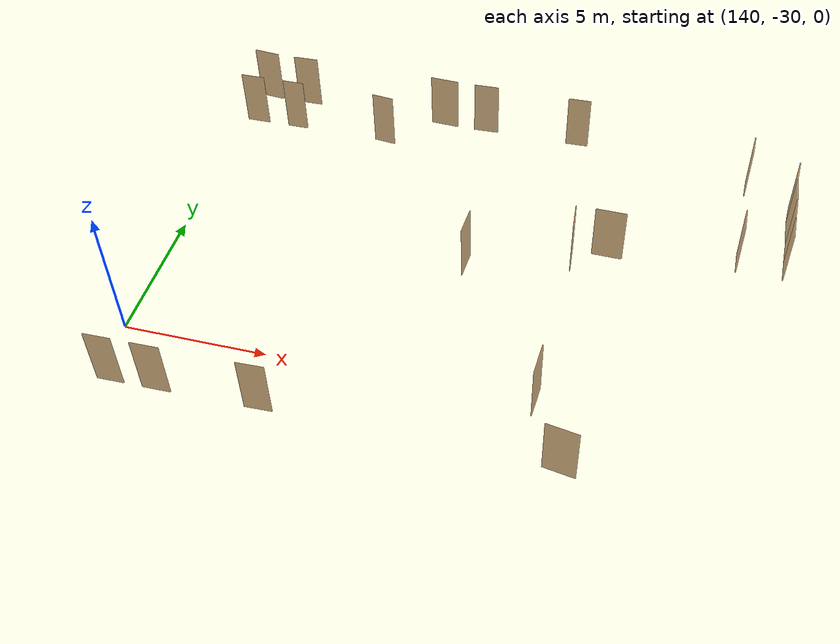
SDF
<sdf version="1.7">
 <world name="sim_world">
  <model name="puerta36">
   <pose>140.5134446038564 -32.16695627295637 0.0 0 0 0.018325965796610864</pose>
   <link name="right">
    <pose>0 0 1.11 0 0 0</pose>
    <visual name="right_visual">
     <geometry><box><size>0.9267566592611919 0.03 2.2</size></box></geometry>
     <material>
      <ambient>0.5 0.25 0 0.6</ambient>
      <diffuse>0.5 0.25 0 0.6</diffuse>
      <pbr><metal><metalness>0.0</metalness></metal></pbr>
     </material>
    </visual>
    <collision name="right_collision">
     <geometry><box><size>0.9267566592611919 0.03 2.2</size></box></geometry>
     <surface><contact><collide_bitmask>0x02</collide_bitmask></contact></surface>
    </collision>
    <inertial>
     <mass>50.0</mass>
     <inertia><ixx>20.17041666666667</ixx><iyy>23.74532460618736</iyy><izz>3.5824079395206874</izz></inertia>
    </inertial>
   </link>
   <joint name="right_joint" type="revolute">
    <parent>world</parent>
    <child>right</child>
    <axis><xyz>0 0 -1</xyz><limit><lower>0</lower><upper>1.57</upper></limit></axis>
    <pose>0.46837832963059595 0 0 0 0 0</pose>
   </joint>
   <plugin name="register_component" filename="libregister_component.so">
    <component name="Door">
     <v_max_door>0.5</v_max_door>
     <a_max_door>0.3</a_max_door>
     <a_nom_door>0.15</a_nom_door>
     <dx_min_door>0.01</dx_min_door>
     <f_max_door>500.0</f_max_door>
     <ros_interface>true</ros_interface>
     <door name="puerta36" type="SwingDoor" left_joint_name="empty_joint" right_joint_name="right_joint"/>
    </component>
   </plugin>
  </model>
  <model name="puerta37">
   <pose>142.0958940419641 -32.151136617033885 0.0 0 0 -3.1268170966334603</pose>
   <link name="right">
    <pose>0 0 1.11 0 0 0</pose>
    <visual name="right_visual">
     <geometry><box><size>0.9695792409944827 0.03 2.2</size></box></geometry>
     <material>
      <ambient>0.5 0.25 0 0.6</ambient>
      <diffuse>0.5 0.25 0 0.6</diffuse>
      <pbr><metal><metalness>0.0</metalness></metal></pbr>
     </material>
    </visual>
    <collision name="right_collision">
     <geometry><box><size>0.9695792409944827 0.03 2.2</size></box></geometry>
     <surface><contact><collide_bitmask>0x02</collide_bitmask></contact></surface>
    </collision>
    <inertial>
     <mass>50.0</mass>
     <inertia><ixx>20.17041666666667</ixx><iyy>24.08368293569766</iyy><izz>3.920766269030988</izz></inertia>
    </inertial>
   </link>
   <joint name="right_joint" type="revolute">
    <parent>world</parent>
    <child>right</child>
    <axis><xyz>0 0 1</xyz><limit><lower>0</lower><upper>1.57</upper></limit></axis>
    <pose>0.48978962049724134 0 0 0 0 0</pose>
   </joint>
   <plugin name="register_component" filename="libregister_component.so">
    <component name="Door">
     <v_max_door>0.5</v_max_door>
     <a_max_door>0.3</a_max_door>
     <a_nom_door>0.15</a_nom_door>
     <dx_min_door>0.01</dx_min_door>
     <f_max_door>500.0</f_max_door>
     <ros_interface>true</ros_interface>
     <door name="puerta37" type="SwingDoor" left_joint_name="empty_joint" right_joint_name="right_joint"/>
    </component>
   </plugin>
  </model>
  <model name="puerta40">
   <pose>145.52263767518372 -32.101174272863815 0.0 0 0 -3.1098551438584674</pose>
   <link name="right">
    <pose>0 0 1.11 0 0 0</pose>
    <visual name="right_visual">
     <geometry><box><size>0.9274080230695789 0.03 2.2</size></box></geometry>
     <material>
      <ambient>0.5 0.25 0 0.6</ambient>
      <diffuse>0.5 0.25 0 0.6</diffuse>
      <pbr><metal><metalness>0.0</metalness></metal></pbr>
     </material>
    </visual>
    <collision name="right_collision">
     <geometry><box><size>0.9274080230695789 0.03 2.2</size></box></geometry>
     <surface><contact><collide_bitmask>0x02</collide_bitmask></contact></surface>
    </collision>
    <inertial>
     <mass>50.0</mass>
     <inertia><ixx>20.17041666666667</ixx><iyy>23.750356838557607</iyy><izz>3.587440171890936</izz></inertia>
    </inertial>
   </link>
   <joint name="right_joint" type="revolute">
    <parent>world</parent>
    <child>right</child>
    <axis><xyz>0 0 1</xyz><limit><lower>0</lower><upper>1.57</upper></limit></axis>
    <pose>0.46870401153478947 0 0 0 0 0</pose>
   </joint>
   <plugin name="register_component" filename="libregister_component.so">
    <component name="Door">
     <v_max_door>0.5</v_max_door>
     <a_max_door>0.3</a_max_door>
     <a_nom_door>0.15</a_nom_door>
     <dx_min_door>0.01</dx_min_door>
     <f_max_door>500.0</f_max_door>
     <ros_interface>true</ros_interface>
     <door name="puerta40" type="SwingDoor" left_joint_name="empty_joint" right_joint_name="right_joint"/>
    </component>
   </plugin>
  </model>
  <model name="puerta42">
   <pose>155.13844302609817 -32.1556805607563 0.0 0 0 2.980217543169103</pose>
   <link name="right">
    <pose>0 0 1.11 0 0 0</pose>
    <visual name="right_visual">
     <geometry><box><size>1.0934528577027387 0.03 2.2</size></box></geometry>
     <material>
      <ambient>0.5 0.25 0 0.6</ambient>
      <diffuse>0.5 0.25 0 0.6</diffuse>
      <pbr><metal><metalness>0.0</metalness></metal></pbr>
     </material>
    </visual>
    <collision name="right_collision">
     <geometry><box><size>1.0934528577027387 0.03 2.2</size></box></geometry>
     <surface><contact><collide_bitmask>0x02</collide_bitmask></contact></surface>
    </collision>
    <inertial>
     <mass>50.0</mass>
     <inertia><ixx>20.17041666666667</ixx><iyy>25.148496466742863</iyy><izz>4.98557980007619</izz></inertia>
    </inertial>
   </link>
   <joint name="right_joint" type="revolute">
    <parent>world</parent>
    <child>right</child>
    <axis><xyz>0 0 1</xyz><limit><lower>0</lower><upper>1.57</upper></limit></axis>
    <pose>0.5517264288513694 0 0 0 0 0</pose>
   </joint>
   <plugin name="register_component" filename="libregister_component.so">
    <component name="Door">
     <v_max_door>0.5</v_max_door>
     <a_max_door>0.3</a_max_door>
     <a_nom_door>0.15</a_nom_door>
     <dx_min_door>0.01</dx_min_door>
     <f_max_door>500.0</f_max_door>
     <ros_interface>true</ros_interface>
     <door name="puerta42" type="SwingDoor" left_joint_name="empty_joint" right_joint_name="right_joint"/>
    </component>
   </plugin>
  </model>
  <model name="puerta50">
   <pose>155.1196992582432 -22.921293004430336 0.0 0 0 3.1264359195945257</pose>
   <link name="right">
    <pose>0 0 1.11 0 0 0</pose>
    <visual name="right_visual">
     <geometry><box><size>1.0892978382938272 0.03 2.2</size></box></geometry>
     <material>
      <ambient>0.5 0.25 0 0.6</ambient>
      <diffuse>0.5 0.25 0 0.6</diffuse>
      <pbr><metal><metalness>0.0</metalness></metal></pbr>
     </material>
    </visual>
    <collision name="right_collision">
     <geometry><box><size>1.0892978382938272 0.03 2.2</size></box></geometry>
     <surface><contact><collide_bitmask>0x02</collide_bitmask></contact></surface>
    </collision>
    <inertial>
     <mass>50.0</mass>
     <inertia><ixx>20.17041666666667</ixx><iyy>25.11070741879836</iyy><izz>4.947790752131687</izz></inertia>
    </inertial>
   </link>
   <joint name="right_joint" type="revolute">
    <parent>world</parent>
    <child>right</child>
    <axis><xyz>0 0 1</xyz><limit><lower>0</lower><upper>1.57</upper></limit></axis>
    <pose>0.5496489191469136 0 0 0 0 0</pose>
   </joint>
   <plugin name="register_component" filename="libregister_component.so">
    <component name="Door">
     <v_max_door>0.5</v_max_door>
     <a_max_door>0.3</a_max_door>
     <a_nom_door>0.15</a_nom_door>
     <dx_min_door>0.01</dx_min_door>
     <f_max_door>500.0</f_max_door>
     <ros_interface>true</ros_interface>
     <door name="puerta50" type="SwingDoor" left_joint_name="empty_joint" right_joint_name="right_joint"/>
    </component>
   </plugin>
  </model>
  <model name="puerta51">
   <pose>159.61420655590098 -22.18936043992106 0.0 0 0 -1.5525861892423465</pose>
   <link name="right">
    <pose>0 0 1.11 0 0 0</pose>
    <visual name="right_visual">
     <geometry><box><size>0.8980557554901828 0.03 2.2</size></box></geometry>
     <material>
      <ambient>0.5 0.25 0 0.6</ambient>
      <diffuse>0.5 0.25 0 0.6</diffuse>
      <pbr><metal><metalness>0.0</metalness></metal></pbr>
     </material>
    </visual>
    <collision name="right_collision">
     <geometry><box><size>0.8980557554901828 0.03 2.2</size></box></geometry>
     <surface><contact><collide_bitmask>0x02</collide_bitmask></contact></surface>
    </collision>
    <inertial>
     <mass>50.0</mass>
     <inertia><ixx>20.17041666666667</ixx><iyy>23.52710058320435</iyy><izz>3.3641839165376797</izz></inertia>
    </inertial>
   </link>
   <joint name="right_joint" type="revolute">
    <parent>world</parent>
    <child>right</child>
    <axis><xyz>0 0 -1</xyz><limit><lower>0</lower><upper>1.57</upper></limit></axis>
    <pose>0.4540278777450914 0 0 0 0 0</pose>
   </joint>
   <plugin name="register_component" filename="libregister_component.so">
    <component name="Door">
     <v_max_door>0.5</v_max_door>
     <a_max_door>0.3</a_max_door>
     <a_nom_door>0.15</a_nom_door>
     <dx_min_door>0.01</dx_min_door>
     <f_max_door>500.0</f_max_door>
     <ros_interface>true</ros_interface>
     <door name="puerta51" type="SwingDoor" left_joint_name="empty_joint" right_joint_name="right_joint"/>
    </component>
   </plugin>
  </model>
  <model name="puerta52">
   <pose>161.24504057994181 -22.18826652754344 0.0 0 0 1.5707963267948966</pose>
   <link name="right">
    <pose>0 0 1.11 0 0 0</pose>
    <visual name="right_visual">
     <geometry><box><size>0.8875551058360232 0.03 2.2</size></box></geometry>
     <material>
      <ambient>0.5 0.25 0 0.6</ambient>
      <diffuse>0.5 0.25 0 0.6</diffuse>
      <pbr><metal><metalness>0.0</metalness></metal></pbr>
     </material>
    </visual>
    <collision name="right_collision">
     <geometry><box><size>0.8875551058360232 0.03 2.2</size></box></geometry>
     <surface><contact><collide_bitmask>0x02</collide_bitmask></contact></surface>
    </collision>
    <inertial>
     <mass>50.0</mass>
     <inertia><ixx>20.17041666666667</ixx><iyy>23.448975274564983</iyy><izz>3.2860586078983096</izz></inertia>
    </inertial>
   </link>
   <joint name="right_joint" type="revolute">
    <parent>world</parent>
    <child>right</child>
    <axis><xyz>0 0 1</xyz><limit><lower>0</lower><upper>1.57</upper></limit></axis>
    <pose>0.4487775529180116 0 0 0 0 0</pose>
   </joint>
   <plugin name="register_component" filename="libregister_component.so">
    <component name="Door">
     <v_max_door>0.5</v_max_door>
     <a_max_door>0.3</a_max_door>
     <a_nom_door>0.15</a_nom_door>
     <dx_min_door>0.01</dx_min_door>
     <f_max_door>500.0</f_max_door>
     <ros_interface>true</ros_interface>
     <door name="puerta52" type="SwingDoor" left_joint_name="empty_joint" right_joint_name="right_joint"/>
    </component>
   </plugin>
  </model>
  <model name="puerta53">
   <pose>161.250257700512 -21.2678234088834 0.0 0 0 -1.5818569345609113</pose>
   <link name="right">
    <pose>0 0 1.11 0 0 0</pose>
    <visual name="right_visual">
     <geometry><box><size>0.9333888365966434 0.03 2.2</size></box></geometry>
     <material>
      <ambient>0.5 0.25 0 0.6</ambient>
      <diffuse>0.5 0.25 0 0.6</diffuse>
      <pbr><metal><metalness>0.0</metalness></metal></pbr>
     </material>
    </visual>
    <collision name="right_collision">
     <geometry><box><size>0.9333888365966434 0.03 2.2</size></box></geometry>
     <surface><contact><collide_bitmask>0x02</collide_bitmask></contact></surface>
    </collision>
    <inertial>
     <mass>50.0</mass>
     <inertia><ixx>20.17041666666667</ixx><iyy>23.79672800118015</iyy><izz>3.6338113345134815</izz></inertia>
    </inertial>
   </link>
   <joint name="right_joint" type="revolute">
    <parent>world</parent>
    <child>right</child>
    <axis><xyz>0 0 -1</xyz><limit><lower>0</lower><upper>1.57</upper></limit></axis>
    <pose>0.4716944182983217 0 0 0 0 0</pose>
   </joint>
   <plugin name="register_component" filename="libregister_component.so">
    <component name="Door">
     <v_max_door>0.5</v_max_door>
     <a_max_door>0.3</a_max_door>
     <a_nom_door>0.15</a_nom_door>
     <dx_min_door>0.01</dx_min_door>
     <f_max_door>500.0</f_max_door>
     <ros_interface>true</ros_interface>
     <door name="puerta53" type="SwingDoor" left_joint_name="empty_joint" right_joint_name="right_joint"/>
    </component>
   </plugin>
  </model>
  <model name="puerta54">
   <pose>161.23466944913093 -20.27333083696918 0.0 0 0 1.6105693299737736</pose>
   <link name="right">
    <pose>0 0 1.11 0 0 0</pose>
    <visual name="right_visual">
     <geometry><box><size>1.0364816135699786 0.03 2.2</size></box></geometry>
     <material>
      <ambient>0.5 0.25 0 0.6</ambient>
      <diffuse>0.5 0.25 0 0.6</diffuse>
      <pbr><metal><metalness>0.0</metalness></metal></pbr>
     </material>
    </visual>
    <collision name="right_collision">
     <geometry><box><size>1.0364816135699786 0.03 2.2</size></box></geometry>
     <surface><contact><collide_bitmask>0x02</collide_bitmask></contact></surface>
    </collision>
    <inertial>
     <mass>50.0</mass>
     <inertia><ixx>20.17041666666667</ixx><iyy>24.64289223028595</iyy><izz>4.479975563619276</izz></inertia>
    </inertial>
   </link>
   <joint name="right_joint" type="revolute">
    <parent>world</parent>
    <child>right</child>
    <axis><xyz>0 0 1</xyz><limit><lower>0</lower><upper>1.57</upper></limit></axis>
    <pose>0.5232408067849893 0 0 0 0 0</pose>
   </joint>
   <plugin name="register_component" filename="libregister_component.so">
    <component name="Door">
     <v_max_door>0.5</v_max_door>
     <a_max_door>0.3</a_max_door>
     <a_nom_door>0.15</a_nom_door>
     <dx_min_door>0.01</dx_min_door>
     <f_max_door>500.0</f_max_door>
     <ros_interface>true</ros_interface>
     <door name="puerta54" type="SwingDoor" left_joint_name="empty_joint" right_joint_name="right_joint"/>
    </component>
   </plugin>
  </model>
  <model name="puerta55">
   <pose>161.2398655329246 -19.30077962293681 0.0 0 0 -1.628548480696474</pose>
   <link name="right">
    <pose>0 0 1.11 0 0 0</pose>
    <visual name="right_visual">
     <geometry><box><size>0.8909504733032164 0.03 2.2</size></box></geometry>
     <material>
      <ambient>0.5 0.25 0 0.6</ambient>
      <diffuse>0.5 0.25 0 0.6</diffuse>
      <pbr><metal><metalness>0.0</metalness></metal></pbr>
     </material>
    </visual>
    <collision name="right_collision">
     <geometry><box><size>0.8909504733032164 0.03 2.2</size></box></geometry>
     <surface><contact><collide_bitmask>0x02</collide_bitmask></contact></surface>
    </collision>
    <inertial>
     <mass>50.0</mass>
     <inertia><ixx>20.17041666666667</ixx><iyy>23.474136441163445</iyy><izz>3.3112197744967724</izz></inertia>
    </inertial>
   </link>
   <joint name="right_joint" type="revolute">
    <parent>world</parent>
    <child>right</child>
    <axis><xyz>0 0 -1</xyz><limit><lower>0</lower><upper>1.57</upper></limit></axis>
    <pose>0.4504752366516082 0 0 0 0 0</pose>
   </joint>
   <plugin name="register_component" filename="libregister_component.so">
    <component name="Door">
     <v_max_door>0.5</v_max_door>
     <a_max_door>0.3</a_max_door>
     <a_nom_door>0.15</a_nom_door>
     <dx_min_door>0.01</dx_min_door>
     <f_max_door>500.0</f_max_door>
     <ros_interface>true</ros_interface>
     <door name="puerta55" type="SwingDoor" left_joint_name="empty_joint" right_joint_name="right_joint"/>
    </component>
   </plugin>
  </model>
  <model name="puerta56">
   <pose>159.61323886418228 -18.25874393614917 0.0 0 0 -1.5883074064098115</pose>
   <link name="right">
    <pose>0 0 1.11 0 0 0</pose>
    <visual name="right_visual">
     <geometry><box><size>0.8237732088215819 0.03 2.2</size></box></geometry>
     <material>
      <ambient>0.5 0.25 0 0.6</ambient>
      <diffuse>0.5 0.25 0 0.6</diffuse>
      <pbr><metal><metalness>0.0</metalness></metal></pbr>
     </material>
    </visual>
    <collision name="right_collision">
     <geometry><box><size>0.8237732088215819 0.03 2.2</size></box></geometry>
     <surface><contact><collide_bitmask>0x02</collide_bitmask></contact></surface>
    </collision>
    <inertial>
     <mass>50.0</mass>
     <inertia><ixx>20.17041666666667</ixx><iyy>22.994176248217528</iyy><izz>2.8312595815508566</izz></inertia>
    </inertial>
   </link>
   <joint name="right_joint" type="revolute">
    <parent>world</parent>
    <child>right</child>
    <axis><xyz>0 0 -1</xyz><limit><lower>0</lower><upper>1.57</upper></limit></axis>
    <pose>0.41688660441079095 0 0 0 0 0</pose>
   </joint>
   <plugin name="register_component" filename="libregister_component.so">
    <component name="Door">
     <v_max_door>0.5</v_max_door>
     <a_max_door>0.3</a_max_door>
     <a_nom_door>0.15</a_nom_door>
     <dx_min_door>0.01</dx_min_door>
     <f_max_door>500.0</f_max_door>
     <ros_interface>true</ros_interface>
     <door name="puerta56" type="SwingDoor" left_joint_name="empty_joint" right_joint_name="right_joint"/>
    </component>
   </plugin>
  </model>
  <model name="puerta57">
   <pose>153.0348074503847 -17.24184719727026 0.0 0 0 -3.1088472659203785</pose>
   <link name="right">
    <pose>0 0 1.11 0 0 0</pose>
    <visual name="right_visual">
     <geometry><box><size>0.8471611948342476 0.03 2.2</size></box></geometry>
     <material>
      <ambient>0.5 0.25 0 0.6</ambient>
      <diffuse>0.5 0.25 0 0.6</diffuse>
      <pbr><metal><metalness>0.0</metalness></metal></pbr>
     </material>
    </visual>
    <collision name="right_collision">
     <geometry><box><size>0.8471611948342476 0.03 2.2</size></box></geometry>
     <surface><contact><collide_bitmask>0x02</collide_bitmask></contact></surface>
    </collision>
    <inertial>
     <mass>50.0</mass>
     <inertia><ixx>20.17041666666667</ixx><iyy>23.157008708470794</iyy><izz>2.9940920418041252</izz></inertia>
    </inertial>
   </link>
   <joint name="right_joint" type="revolute">
    <parent>world</parent>
    <child>right</child>
    <axis><xyz>0 0 1</xyz><limit><lower>0</lower><upper>1.57</upper></limit></axis>
    <pose>0.4285805974171238 0 0 0 0 0</pose>
   </joint>
   <plugin name="register_component" filename="libregister_component.so">
    <component name="Door">
     <v_max_door>0.5</v_max_door>
     <a_max_door>0.3</a_max_door>
     <a_nom_door>0.15</a_nom_door>
     <dx_min_door>0.01</dx_min_door>
     <f_max_door>500.0</f_max_door>
     <ros_interface>true</ros_interface>
     <door name="puerta57" type="SwingDoor" left_joint_name="empty_joint" right_joint_name="right_joint"/>
    </component>
   </plugin>
  </model>
  <model name="puerta58">
   <pose>149.42885151822412 -17.273444435562244 0.0 0 0 -3.104551198219249</pose>
   <link name="right">
    <pose>0 0 1.11 0 0 0</pose>
    <visual name="right_visual">
     <geometry><box><size>0.9386520296741743 0.03 2.2</size></box></geometry>
     <material>
      <ambient>0.5 0.25 0 0.6</ambient>
      <diffuse>0.5 0.25 0 0.6</diffuse>
      <pbr><metal><metalness>0.0</metalness></metal></pbr>
     </material>
    </visual>
    <collision name="right_collision">
     <geometry><box><size>0.9386520296741743 0.03 2.2</size></box></geometry>
     <surface><contact><collide_bitmask>0x02</collide_bitmask></contact></surface>
    </collision>
    <inertial>
     <mass>50.0</mass>
     <inertia><ixx>20.17041666666667</ixx><iyy>23.83778180338103</iyy><izz>3.6748651367143625</izz></inertia>
    </inertial>
   </link>
   <joint name="right_joint" type="revolute">
    <parent>world</parent>
    <child>right</child>
    <axis><xyz>0 0 1</xyz><limit><lower>0</lower><upper>1.57</upper></limit></axis>
    <pose>0.47432601483708714 0 0 0 0 0</pose>
   </joint>
   <plugin name="register_component" filename="libregister_component.so">
    <component name="Door">
     <v_max_door>0.5</v_max_door>
     <a_max_door>0.3</a_max_door>
     <a_nom_door>0.15</a_nom_door>
     <dx_min_door>0.01</dx_min_door>
     <f_max_door>500.0</f_max_door>
     <ros_interface>true</ros_interface>
     <door name="puerta58" type="SwingDoor" left_joint_name="empty_joint" right_joint_name="right_joint"/>
    </component>
   </plugin>
  </model>
  <model name="puerta59">
   <pose>147.7680821612342 -17.266418152213696 0.0 0 0 -0.04544798572538548</pose>
   <link name="right">
    <pose>0 0 1.11 0 0 0</pose>
    <visual name="right_visual">
     <geometry><box><size>1.0725764548417194 0.03 2.2</size></box></geometry>
     <material>
      <ambient>0.5 0.25 0 0.6</ambient>
      <diffuse>0.5 0.25 0 0.6</diffuse>
      <pbr><metal><metalness>0.0</metalness></metal></pbr>
     </material>
    </visual>
    <collision name="right_collision">
     <geometry><box><size>1.0725764548417194 0.03 2.2</size></box></geometry>
     <surface><contact><collide_bitmask>0x02</collide_bitmask></contact></surface>
    </collision>
    <inertial>
     <mass>50.0</mass>
     <inertia><ixx>20.17041666666667</ixx><iyy>24.96008438117013</iyy><izz>4.797167714503462</izz></inertia>
    </inertial>
   </link>
   <joint name="right_joint" type="revolute">
    <parent>world</parent>
    <child>right</child>
    <axis><xyz>0 0 -1</xyz><limit><lower>0</lower><upper>1.57</upper></limit></axis>
    <pose>0.5412882274208597 0 0 0 0 0</pose>
   </joint>
   <plugin name="register_component" filename="libregister_component.so">
    <component name="Door">
     <v_max_door>0.5</v_max_door>
     <a_max_door>0.3</a_max_door>
     <a_nom_door>0.15</a_nom_door>
     <dx_min_door>0.01</dx_min_door>
     <f_max_door>500.0</f_max_door>
     <ros_interface>true</ros_interface>
     <door name="puerta59" type="SwingDoor" left_joint_name="empty_joint" right_joint_name="right_joint"/>
    </component>
   </plugin>
  </model>
  <model name="puerta60">
   <pose>145.74051556931823 -18.827662519616787 0.0 0 0 3.0372388260835494</pose>
   <link name="right">
    <pose>0 0 1.11 0 0 0</pose>
    <visual name="right_visual">
     <geometry><box><size>0.8067148786532723 0.03 2.2</size></box></geometry>
     <material>
      <ambient>0.5 0.25 0 0.6</ambient>
      <diffuse>0.5 0.25 0 0.6</diffuse>
      <pbr><metal><metalness>0.0</metalness></metal></pbr>
     </material>
    </visual>
    <collision name="right_collision">
     <geometry><box><size>0.8067148786532723 0.03 2.2</size></box></geometry>
     <surface><contact><collide_bitmask>0x02</collide_bitmask></contact></surface>
    </collision>
    <inertial>
     <mass>50.0</mass>
     <inertia><ixx>20.17041666666667</ixx><iyy>22.878287064335687</iyy><izz>2.7153703976690164</izz></inertia>
    </inertial>
   </link>
   <joint name="right_joint" type="revolute">
    <parent>world</parent>
    <child>right</child>
    <axis><xyz>0 0 -1</xyz><limit><lower>0</lower><upper>1.57</upper></limit></axis>
    <pose>0.40835743932663615 0 0 0 0 0</pose>
   </joint>
   <plugin name="register_component" filename="libregister_component.so">
    <component name="Door">
     <v_max_door>0.5</v_max_door>
     <a_max_door>0.3</a_max_door>
     <a_nom_door>0.15</a_nom_door>
     <dx_min_door>0.01</dx_min_door>
     <f_max_door>500.0</f_max_door>
     <ros_interface>true</ros_interface>
     <door name="puerta60" type="SwingDoor" left_joint_name="empty_joint" right_joint_name="right_joint"/>
    </component>
   </plugin>
  </model>
  <model name="puerta61">
   <pose>142.1386828453502 -18.788954850870287 0.0 0 0 -3.132088030680331</pose>
   <link name="right">
    <pose>0 0 1.11 0 0 0</pose>
    <visual name="right_visual">
     <geometry><box><size>0.7956607831232737 0.03 2.2</size></box></geometry>
     <material>
      <ambient>0.5 0.25 0 0.6</ambient>
      <diffuse>0.5 0.25 0 0.6</diffuse>
      <pbr><metal><metalness>0.0</metalness></metal></pbr>
     </material>
    </visual>
    <collision name="right_collision">
     <geometry><box><size>0.7956607831232737 0.03 2.2</size></box></geometry>
     <surface><contact><collide_bitmask>0x02</collide_bitmask></contact></surface>
    </collision>
    <inertial>
     <mass>50.0</mass>
     <inertia><ixx>20.17041666666667</ixx><iyy>22.804483674168093</iyy><izz>2.641567007501422</izz></inertia>
    </inertial>
   </link>
   <joint name="right_joint" type="revolute">
    <parent>world</parent>
    <child>right</child>
    <axis><xyz>0 0 -1</xyz><limit><lower>0</lower><upper>1.57</upper></limit></axis>
    <pose>0.40283039156163686 0 0 0 0 0</pose>
   </joint>
   <plugin name="register_component" filename="libregister_component.so">
    <component name="Door">
     <v_max_door>0.5</v_max_door>
     <a_max_door>0.3</a_max_door>
     <a_nom_door>0.15</a_nom_door>
     <dx_min_door>0.01</dx_min_door>
     <f_max_door>500.0</f_max_door>
     <ros_interface>true</ros_interface>
     <door name="puerta61" type="SwingDoor" left_joint_name="empty_joint" right_joint_name="right_joint"/>
    </component>
   </plugin>
  </model>
  <model name="puerta62">
   <pose>142.12564004392473 -17.25587872719087 0.0 0 0 -3.1119546101354922</pose>
   <link name="right">
    <pose>0 0 1.11 0 0 0</pose>
    <visual name="right_visual">
     <geometry><box><size>0.938417816938099 0.03 2.2</size></box></geometry>
     <material>
      <ambient>0.5 0.25 0 0.6</ambient>
      <diffuse>0.5 0.25 0 0.6</diffuse>
      <pbr><metal><metalness>0.0</metalness></metal></pbr>
     </material>
    </visual>
    <collision name="right_collision">
     <geometry><box><size>0.938417816938099 0.03 2.2</size></box></geometry>
     <surface><contact><collide_bitmask>0x02</collide_bitmask></contact></surface>
    </collision>
    <inertial>
     <mass>50.0</mass>
     <inertia><ixx>20.17041666666667</ixx><iyy>23.835949996445287</iyy><izz>3.673033329778615</izz></inertia>
    </inertial>
   </link>
   <joint name="right_joint" type="revolute">
    <parent>world</parent>
    <child>right</child>
    <axis><xyz>0 0 1</xyz><limit><lower>0</lower><upper>1.57</upper></limit></axis>
    <pose>0.4742089084690495 0 0 0 0 0</pose>
   </joint>
   <plugin name="register_component" filename="libregister_component.so">
    <component name="Door">
     <v_max_door>0.5</v_max_door>
     <a_max_door>0.3</a_max_door>
     <a_nom_door>0.15</a_nom_door>
     <dx_min_door>0.01</dx_min_door>
     <f_max_door>500.0</f_max_door>
     <ros_interface>true</ros_interface>
     <door name="puerta62" type="SwingDoor" left_joint_name="empty_joint" right_joint_name="right_joint"/>
    </component>
   </plugin>
  </model>
  <model name="puerta63">
   <pose>140.50679698248473 -17.226469313654125 0.0 0 0 -0.08814844436684287</pose>
   <link name="right">
    <pose>0 0 1.11 0 0 0</pose>
    <visual name="right_visual">
     <geometry><box><size>0.9773870367022183 0.03 2.2</size></box></geometry>
     <material>
      <ambient>0.5 0.25 0 0.6</ambient>
      <diffuse>0.5 0.25 0 0.6</diffuse>
      <pbr><metal><metalness>0.0</metalness></metal></pbr>
     </material>
    </visual>
    <collision name="right_collision">
     <geometry><box><size>0.9773870367022183 0.03 2.2</size></box></geometry>
     <surface><contact><collide_bitmask>0x02</collide_bitmask></contact></surface>
    </collision>
    <inertial>
     <mass>50.0</mass>
     <inertia><ixx>20.17041666666667</ixx><iyy>24.147022581306434</iyy><izz>3.9841059146397644</izz></inertia>
    </inertial>
   </link>
   <joint name="right_joint" type="revolute">
    <parent>world</parent>
    <child>right</child>
    <axis><xyz>0 0 -1</xyz><limit><lower>0</lower><upper>1.57</upper></limit></axis>
    <pose>0.49369351835110914 0 0 0 0 0</pose>
   </joint>
   <plugin name="register_component" filename="libregister_component.so">
    <component name="Door">
     <v_max_door>0.5</v_max_door>
     <a_max_door>0.3</a_max_door>
     <a_nom_door>0.15</a_nom_door>
     <dx_min_door>0.01</dx_min_door>
     <f_max_door>500.0</f_max_door>
     <ros_interface>true</ros_interface>
     <door name="puerta63" type="SwingDoor" left_joint_name="empty_joint" right_joint_name="right_joint"/>
    </component>
   </plugin>
  </model>
  <model name="puerta64">
   <pose>140.51205617660787 -18.804290660933436 0.0 0 0 0.00857644060095719</pose>
   <link name="right">
    <pose>0 0 1.11 0 0 0</pose>
    <visual name="right_visual">
     <geometry><box><size>0.8877564172318647 0.03 2.2</size></box></geometry>
     <material>
      <ambient>0.5 0.25 0 0.6</ambient>
      <diffuse>0.5 0.25 0 0.6</diffuse>
      <pbr><metal><metalness>0.0</metalness></metal></pbr>
     </material>
    </visual>
    <collision name="right_collision">
     <geometry><box><size>0.8877564172318647 0.03 2.2</size></box></geometry>
     <surface><contact><collide_bitmask>0x02</collide_bitmask></contact></surface>
    </collision>
    <inertial>
     <mass>50.0</mass>
     <inertia><ixx>20.17041666666667</ixx><iyy>23.450464401401494</iyy><izz>3.28754773473482</izz></inertia>
    </inertial>
   </link>
   <joint name="right_joint" type="revolute">
    <parent>world</parent>
    <child>right</child>
    <axis><xyz>0 0 1</xyz><limit><lower>0</lower><upper>1.57</upper></limit></axis>
    <pose>0.44887820861593236 0 0 0 0 0</pose>
   </joint>
   <plugin name="register_component" filename="libregister_component.so">
    <component name="Door">
     <v_max_door>0.5</v_max_door>
     <a_max_door>0.3</a_max_door>
     <a_nom_door>0.15</a_nom_door>
     <dx_min_door>0.01</dx_min_door>
     <f_max_door>500.0</f_max_door>
     <ros_interface>true</ros_interface>
     <door name="puerta64" type="SwingDoor" left_joint_name="empty_joint" right_joint_name="right_joint"/>
    </component>
   </plugin>
  </model>
  <model name="puerta71">
   <pose>153.9527682294186 -29.76815368627433 0.0 0 0 -1.6240940586057904</pose>
   <link name="right">
    <pose>0 0 1.11 0 0 0</pose>
    <visual name="right_visual">
     <geometry><box><size>1.1193853012563593 0.03 2.2</size></box></geometry>
     <material>
      <ambient>0.5 0.25 0 0.6</ambient>
      <diffuse>0.5 0.25 0 0.6</diffuse>
      <pbr><metal><metalness>0.0</metalness></metal></pbr>
     </material>
    </visual>
    <collision name="right_collision">
     <geometry><box><size>1.1193853012563593 0.03 2.2</size></box></geometry>
     <surface><contact><collide_bitmask>0x02</collide_bitmask></contact></surface>
    </collision>
    <inertial>
     <mass>50.0</mass>
     <inertia><ixx>20.17041666666667</ixx><iyy>25.387597719453296</iyy><izz>5.224681052786626</izz></inertia>
    </inertial>
   </link>
   <joint name="right_joint" type="revolute">
    <parent>world</parent>
    <child>right</child>
    <axis><xyz>0 0 -1</xyz><limit><lower>0</lower><upper>1.57</upper></limit></axis>
    <pose>0.5646926506281796 0 0 0 0 0</pose>
   </joint>
   <plugin name="register_component" filename="libregister_component.so">
    <component name="Door">
     <v_max_door>0.5</v_max_door>
     <a_max_door>0.3</a_max_door>
     <a_nom_door>0.15</a_nom_door>
     <dx_min_door>0.01</dx_min_door>
     <f_max_door>500.0</f_max_door>
     <ros_interface>true</ros_interface>
     <door name="puerta71" type="SwingDoor" left_joint_name="empty_joint" right_joint_name="right_joint"/>
    </component>
   </plugin>
  </model>
  <model name="puerta72">
   <pose>153.93720101481404 -23.42994122324647 0.0 0 0 -1.482723637256512</pose>
   <link name="right">
    <pose>0 0 1.11 0 0 0</pose>
    <visual name="right_visual">
     <geometry><box><size>1.02798066658567 0.03 2.2</size></box></geometry>
     <material>
      <ambient>0.5 0.25 0 0.6</ambient>
      <diffuse>0.5 0.25 0 0.6</diffuse>
      <pbr><metal><metalness>0.0</metalness></metal></pbr>
     </material>
    </visual>
    <collision name="right_collision">
     <geometry><box><size>1.02798066658567 0.03 2.2</size></box></geometry>
     <surface><contact><collide_bitmask>0x02</collide_bitmask></contact></surface>
    </collision>
    <inertial>
     <mass>50.0</mass>
     <inertia><ixx>20.17041666666667</ixx><iyy>24.569767711974663</iyy><izz>4.406851045307994</izz></inertia>
    </inertial>
   </link>
   <joint name="right_joint" type="revolute">
    <parent>world</parent>
    <child>right</child>
    <axis><xyz>0 0 1</xyz><limit><lower>0</lower><upper>1.57</upper></limit></axis>
    <pose>0.5189903332928351 0 0 0 0 0</pose>
   </joint>
   <plugin name="register_component" filename="libregister_component.so">
    <component name="Door">
     <v_max_door>0.5</v_max_door>
     <a_max_door>0.3</a_max_door>
     <a_nom_door>0.15</a_nom_door>
     <dx_min_door>0.01</dx_min_door>
     <f_max_door>500.0</f_max_door>
     <ros_interface>true</ros_interface>
     <door name="puerta72" type="SwingDoor" left_joint_name="empty_joint" right_joint_name="right_joint"/>
    </component>
   </plugin>
  </model>
  <model name="puerta73">
   <pose>150.39061086591573 -24.538537270856903 0.0 0 0 -1.6233901477347101</pose>
   <link name="right">
    <pose>0 0 1.11 0 0 0</pose>
    <visual name="right_visual">
     <geometry><box><size>1.0176369817439734 0.03 2.2</size></box></geometry>
     <material>
      <ambient>0.5 0.25 0 0.6</ambient>
      <diffuse>0.5 0.25 0 0.6</diffuse>
      <pbr><metal><metalness>0.0</metalness></metal></pbr>
     </material>
    </visual>
    <collision name="right_collision">
     <geometry><box><size>1.0176369817439734 0.03 2.2</size></box></geometry>
     <surface><contact><collide_bitmask>0x02</collide_bitmask></contact></surface>
    </collision>
    <inertial>
     <mass>50.0</mass>
     <inertia><ixx>20.17041666666667</ixx><iyy>24.481604277554105</iyy><izz>4.318687610887434</izz></inertia>
    </inertial>
   </link>
   <joint name="right_joint" type="revolute">
    <parent>world</parent>
    <child>right</child>
    <axis><xyz>0 0 -1</xyz><limit><lower>0</lower><upper>1.57</upper></limit></axis>
    <pose>0.5138184908719867 0 0 0 0 0</pose>
   </joint>
   <plugin name="register_component" filename="libregister_component.so">
    <component name="Door">
     <v_max_door>0.5</v_max_door>
     <a_max_door>0.3</a_max_door>
     <a_nom_door>0.15</a_nom_door>
     <dx_min_door>0.01</dx_min_door>
     <f_max_door>500.0</f_max_door>
     <ros_interface>true</ros_interface>
     <door name="puerta73" type="SwingDoor" left_joint_name="empty_joint" right_joint_name="right_joint"/>
    </component>
   </plugin>
  </model>
 </world>
</sdf>
